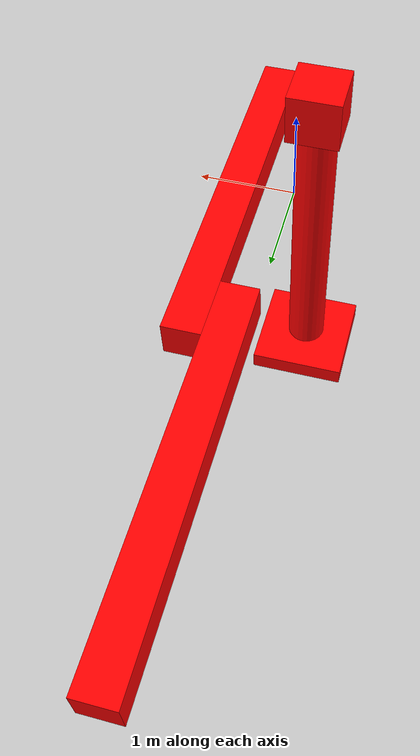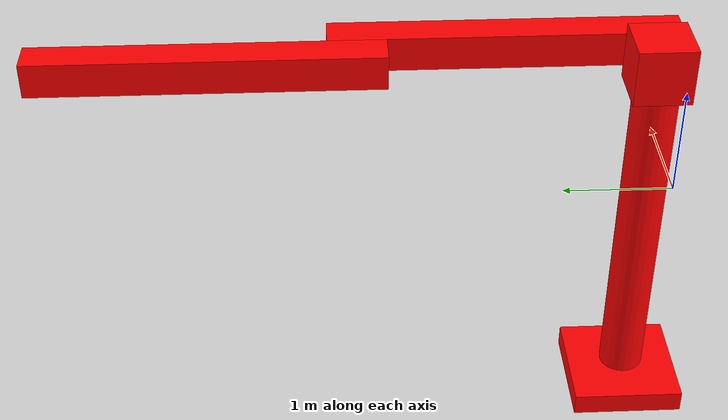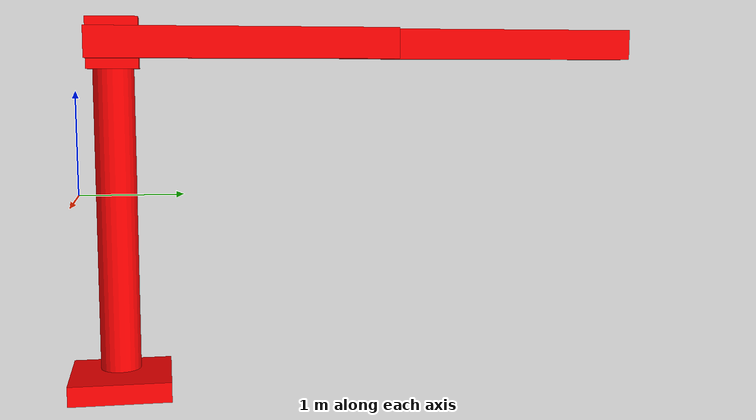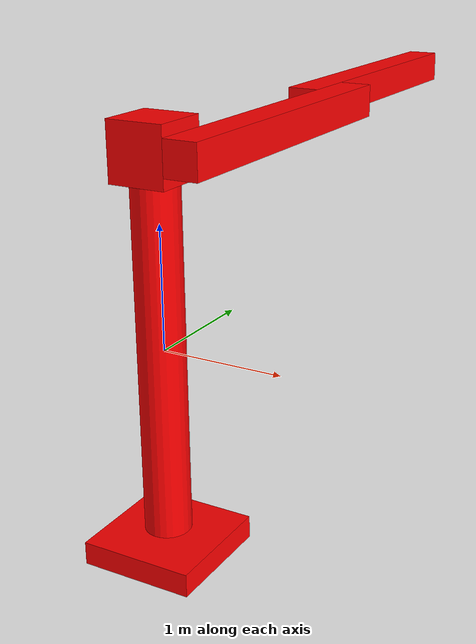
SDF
<?xml version='1.0'?>
<sdf version='1.6'>
  <model name='3dofarm'>
    <link name='link_0'>
      <pose frame=''>-0.27214 0.347509 -1.9245 0 -0 0</pose>
      <inertial>
        <mass>1</mass>
        <inertia>
          <ixx>0.166667</ixx>
          <ixy>0</ixy>
          <ixz>0</ixz>
          <iyy>0.166667</iyy>
          <iyz>0</iyz>
          <izz>0.166667</izz>
        </inertia>
        <pose frame=''>0 0 0 0 -0 0</pose>
      </inertial>
      <self_collide>0</self_collide>
      <kinematic>0</kinematic>
      <gravity>1</gravity>
      <visual name='visual'>
        <pose frame=''>0 0 0 0 -0 0</pose>
        <geometry>
          <box>
            <size>1 1 0.2</size>
          </box>
        </geometry>
        <material>
          <lighting>1</lighting>
          <script>
            <uri>file://media/materials/scripts/gazebo.material</uri>
            <name>Gazebo/Grey</name>
          </script>
          <shader type='pixel'>
            <normal_map>__default__</normal_map>
          </shader>
          <ambient>1 0 0 1</ambient>
          <diffuse>0.7 0.7 0.7 1</diffuse>
          <specular>0.01 0.01 0.01 1</specular>
          <emissive>0 0 0 1</emissive>
        </material>
        <transparency>0</transparency>
        <cast_shadows>1</cast_shadows>
      </visual>
      <collision name='collision'>
        <laser_retro>0</laser_retro>
        <max_contacts>10</max_contacts>
        <pose frame=''>0 0 0 0 -0 0</pose>
        <geometry>
          <box>
            <size>1 1 0.2</size>
          </box>
        </geometry>
        <surface>
          <friction>
            <ode>
              <mu>1</mu>
              <mu2>1</mu2>
              <fdir1>0 0 0</fdir1>
              <slip1>0</slip1>
              <slip2>0</slip2>
            </ode>
            <torsional>
              <coefficient>1</coefficient>
              <patch_radius>0</patch_radius>
              <surface_radius>0</surface_radius>
              <use_patch_radius>1</use_patch_radius>
              <ode>
                <slip>0</slip>
              </ode>
            </torsional>
          </friction>
          <bounce>
            <restitution_coefficient>0</restitution_coefficient>
            <threshold>1e+06</threshold>
          </bounce>
          <contact>
            <collide_without_contact>0</collide_without_contact>
            <collide_without_contact_bitmask>1</collide_without_contact_bitmask>
            <collide_bitmask>1</collide_bitmask>
            <ode>
              <soft_cfm>0</soft_cfm>
              <soft_erp>0.2</soft_erp>
              <kp>1e+13</kp>
              <kd>1</kd>
              <max_vel>0.01</max_vel>
              <min_depth>0</min_depth>
            </ode>
            <bullet>
              <split_impulse>1</split_impulse>
              <split_impulse_penetration_threshold>-0.01</split_impulse_penetration_threshold>
              <soft_cfm>0</soft_cfm>
              <soft_erp>0.2</soft_erp>
              <kp>1e+13</kp>
              <kd>1</kd>
            </bullet>
          </contact>
        </surface>
      </collision>
    </link>
    <link name='link_1'>
      <pose frame=''>-0.272137 0.347508 -0.2845 0 -0 0</pose>
      <inertial>
        <mass>1</mass>
        <inertia>
          <ixx>0.145833</ixx>
          <ixy>0</ixy>
          <ixz>0</ixz>
          <iyy>0.145833</iyy>
          <iyz>0</iyz>
          <izz>0.125</izz>
        </inertia>
        <pose frame=''>0 0 0 0 -0 0</pose>
      </inertial>
      <self_collide>0</self_collide>
      <kinematic>0</kinematic>
      <visual name='visual'>
        <pose frame=''>0 0 0 0 -0 0</pose>
        <geometry>
          <cylinder>
            <radius>0.2</radius>
            <length>3</length>
          </cylinder>
        </geometry>
        <material>
          <lighting>1</lighting>
          <script>
            <uri>file://media/materials/scripts/gazebo.material</uri>
            <name>Gazebo/Grey</name>
          </script>
          <shader type='pixel'>
            <normal_map>__default__</normal_map>
          </shader>
          <ambient>1 0 0 1</ambient>
          <diffuse>0.7 0.7 0.7 1</diffuse>
          <specular>0.01 0.01 0.01 1</specular>
          <emissive>0 0 0 1</emissive>
        </material>
        <transparency>0</transparency>
        <cast_shadows>1</cast_shadows>
      </visual>
      <collision name='collision'>
        <laser_retro>0</laser_retro>
        <max_contacts>10</max_contacts>
        <pose frame=''>0 0 0 0 -0 0</pose>
        <geometry>
          <cylinder>
            <radius>0.2</radius>
            <length>3</length>
          </cylinder>
        </geometry>
        <surface>
          <friction>
            <ode>
              <mu>1</mu>
              <mu2>1</mu2>
              <fdir1>0 0 0</fdir1>
              <slip1>0</slip1>
              <slip2>0</slip2>
            </ode>
            <torsional>
              <coefficient>1</coefficient>
              <patch_radius>0</patch_radius>
              <surface_radius>0</surface_radius>
              <use_patch_radius>1</use_patch_radius>
              <ode>
                <slip>0</slip>
              </ode>
            </torsional>
          </friction>
          <bounce>
            <restitution_coefficient>0</restitution_coefficient>
            <threshold>1e+06</threshold>
          </bounce>
          <contact>
            <collide_without_contact>0</collide_without_contact>
            <collide_without_contact_bitmask>1</collide_without_contact_bitmask>
            <collide_bitmask>1</collide_bitmask>
            <ode>
              <soft_cfm>0</soft_cfm>
              <soft_erp>0.2</soft_erp>
              <kp>1e+13</kp>
              <kd>1</kd>
              <max_vel>0.01</max_vel>
              <min_depth>0</min_depth>
            </ode>
            <bullet>
              <split_impulse>1</split_impulse>
              <split_impulse_penetration_threshold>-0.01</split_impulse_penetration_threshold>
              <soft_cfm>0</soft_cfm>
              <soft_erp>0.2</soft_erp>
              <kp>1e+13</kp>
              <kd>1</kd>
            </bullet>
          </contact>
        </surface>
      </collision>
    </link>
    <link name='link_2'>
      <pose frame=''>-0.272137 0.347508 1.4655 0 -0 0</pose>
      <inertial>
        <mass>1</mass>
        <inertia>
          <ixx>0.166667</ixx>
          <ixy>0</ixy>
          <ixz>0</ixz>
          <iyy>0.166667</iyy>
          <iyz>0</iyz>
          <izz>0.166667</izz>
        </inertia>
        <pose frame=''>0 0 0 0 -0 0</pose>
      </inertial>
      <self_collide>0</self_collide>
      <kinematic>0</kinematic>
      <visual name='visual'>
        <pose frame=''>0 0 0 0 -0 0</pose>
        <geometry>
          <box>
            <size>0.5 0.5 0.5</size>
          </box>
        </geometry>
        <material>
          <lighting>1</lighting>
          <script>
            <uri>file://media/materials/scripts/gazebo.material</uri>
            <name>Gazebo/Grey</name>
          </script>
          <shader type='pixel'>
            <normal_map>__default__</normal_map>
          </shader>
          <ambient>1 0 0 1</ambient>
          <diffuse>0.7 0.7 0.7 1</diffuse>
          <specular>0.01 0.01 0.01 1</specular>
          <emissive>0 0 0 1</emissive>
        </material>
        <transparency>0</transparency>
        <cast_shadows>1</cast_shadows>
      </visual>
      <collision name='collision'>
        <laser_retro>0</laser_retro>
        <max_contacts>10</max_contacts>
        <pose frame=''>0 0 0 0 -0 0</pose>
        <geometry>
          <box>
            <size>0.5 0.5 0.5</size>
          </box>
        </geometry>
        <surface>
          <friction>
            <ode>
              <mu>1</mu>
              <mu2>1</mu2>
              <fdir1>0 0 0</fdir1>
              <slip1>0</slip1>
              <slip2>0</slip2>
            </ode>
            <torsional>
              <coefficient>1</coefficient>
              <patch_radius>0</patch_radius>
              <surface_radius>0</surface_radius>
              <use_patch_radius>1</use_patch_radius>
              <ode>
                <slip>0</slip>
              </ode>
            </torsional>
          </friction>
          <bounce>
            <restitution_coefficient>0</restitution_coefficient>
            <threshold>1e+06</threshold>
          </bounce>
          <contact>
            <collide_without_contact>0</collide_without_contact>
            <collide_without_contact_bitmask>1</collide_without_contact_bitmask>
            <collide_bitmask>1</collide_bitmask>
            <ode>
              <soft_cfm>0</soft_cfm>
              <soft_erp>0.2</soft_erp>
              <kp>1e+13</kp>
              <kd>1</kd>
              <max_vel>0.01</max_vel>
              <min_depth>0</min_depth>
            </ode>
            <bullet>
              <split_impulse>1</split_impulse>
              <split_impulse_penetration_threshold>-0.01</split_impulse_penetration_threshold>
              <soft_cfm>0</soft_cfm>
              <soft_erp>0.2</soft_erp>
              <kp>1e+13</kp>
              <kd>1</kd>
            </bullet>
          </contact>
        </surface>
      </collision>
    </link>
    <link name='link_3'>
      <pose frame=''>0.127862 0.347503 1.4655 0 -0 0</pose>
      <inertial>
        <mass>1</mass>
        <inertia>
          <ixx>0.166667</ixx>
          <ixy>0</ixy>
          <ixz>0</ixz>
          <iyy>0.166667</iyy>
          <iyz>0</iyz>
          <izz>0.166667</izz>
        </inertia>
        <pose frame=''>0 0 0 0 -0 0</pose>
      </inertial>
      <self_collide>0</self_collide>
      <kinematic>0</kinematic>
      <visual name='visual'>
        <pose frame=''>0 1.25 0 0 -0 0</pose>
        <geometry>
          <box>
            <size>0.3 3 0.3</size>
          </box>
        </geometry>
        <material>
          <lighting>1</lighting>
          <script>
            <uri>file://media/materials/scripts/gazebo.material</uri>
            <name>Gazebo/Grey</name>
          </script>
          <shader type='pixel'>
            <normal_map>__default__</normal_map>
          </shader>
          <ambient>1 0 0 1</ambient>
          <diffuse>0.7 0.7 0.7 1</diffuse>
          <specular>0.01 0.01 0.01 1</specular>
          <emissive>0 0 0 1</emissive>
        </material>
        <transparency>0</transparency>
        <cast_shadows>1</cast_shadows>
      </visual>
      <collision name='collision'>
        <laser_retro>0</laser_retro>
        <max_contacts>10</max_contacts>
        <pose frame=''>0 1.25 0 0 -0 0</pose>
        <geometry>
          <box>
            <size>0.3 3 0.3</size>
          </box>
        </geometry>
        <surface>
          <friction>
            <ode>
              <mu>1</mu>
              <mu2>1</mu2>
              <fdir1>0 0 0</fdir1>
              <slip1>0</slip1>
              <slip2>0</slip2>
            </ode>
            <torsional>
              <coefficient>1</coefficient>
              <patch_radius>0</patch_radius>
              <surface_radius>0</surface_radius>
              <use_patch_radius>1</use_patch_radius>
              <ode>
                <slip>0</slip>
              </ode>
            </torsional>
          </friction>
          <bounce>
            <restitution_coefficient>0</restitution_coefficient>
            <threshold>1e+06</threshold>
          </bounce>
          <contact>
            <collide_without_contact>0</collide_without_contact>
            <collide_without_contact_bitmask>1</collide_without_contact_bitmask>
            <collide_bitmask>1</collide_bitmask>
            <ode>
              <soft_cfm>0</soft_cfm>
              <soft_erp>0.2</soft_erp>
              <kp>1e+13</kp>
              <kd>1</kd>
              <max_vel>0.01</max_vel>
              <min_depth>0</min_depth>
            </ode>
            <bullet>
              <split_impulse>1</split_impulse>
              <split_impulse_penetration_threshold>-0.01</split_impulse_penetration_threshold>
              <soft_cfm>0</soft_cfm>
              <soft_erp>0.2</soft_erp>
              <kp>1e+13</kp>
              <kd>1</kd>
            </bullet>
          </contact>
        </surface>
      </collision>
    </link>
    <link name='link_3_clone'>
      <pose frame=''>-0.172137 2.84751 1.4655 0 -0 0</pose>
      <inertial>
        <mass>1</mass>
        <inertia>
          <ixx>0.166667</ixx>
          <ixy>0</ixy>
          <ixz>0</ixz>
          <iyy>0.166667</iyy>
          <iyz>0</iyz>
          <izz>0.166667</izz>
        </inertia>
        <pose frame=''>0 0 0 0 -0 0</pose>
      </inertial>
      <self_collide>0</self_collide>
      <kinematic>0</kinematic>
      <visual name='visual'>
        <pose frame=''>0 1.25 0 0 -0 0</pose>
        <geometry>
          <box>
            <size>0.3 3 0.3</size>
          </box>
        </geometry>
        <material>
          <lighting>1</lighting>
          <script>
            <uri>file://media/materials/scripts/gazebo.material</uri>
            <name>Gazebo/Grey</name>
          </script>
          <shader type='pixel'>
            <normal_map>__default__</normal_map>
          </shader>
          <ambient>1 0 0 1</ambient>
          <diffuse>0.7 0.7 0.7 1</diffuse>
          <specular>0.01 0.01 0.01 1</specular>
          <emissive>0 0 0 1</emissive>
        </material>
        <transparency>0</transparency>
        <cast_shadows>1</cast_shadows>
      </visual>
      <collision name='collision'>
        <laser_retro>0</laser_retro>
        <max_contacts>10</max_contacts>
        <pose frame=''>0 1.25 0 0 -0 0</pose>
        <geometry>
          <box>
            <size>0.3 3 0.3</size>
          </box>
        </geometry>
        <surface>
          <friction>
            <ode>
              <mu>1</mu>
              <mu2>1</mu2>
              <fdir1>0 0 0</fdir1>
              <slip1>0</slip1>
              <slip2>0</slip2>
            </ode>
            <torsional>
              <coefficient>1</coefficient>
              <patch_radius>0</patch_radius>
              <surface_radius>0</surface_radius>
              <use_patch_radius>1</use_patch_radius>
              <ode>
                <slip>0</slip>
              </ode>
            </torsional>
          </friction>
          <bounce>
            <restitution_coefficient>0</restitution_coefficient>
            <threshold>1e+06</threshold>
          </bounce>
          <contact>
            <collide_without_contact>0</collide_without_contact>
            <collide_without_contact_bitmask>1</collide_without_contact_bitmask>
            <collide_bitmask>1</collide_bitmask>
            <ode>
              <soft_cfm>0</soft_cfm>
              <soft_erp>0.2</soft_erp>
              <kp>1e+13</kp>
              <kd>1</kd>
              <max_vel>0.01</max_vel>
              <min_depth>0</min_depth>
            </ode>
            <bullet>
              <split_impulse>1</split_impulse>
              <split_impulse_penetration_threshold>-0.01</split_impulse_penetration_threshold>
              <soft_cfm>0</soft_cfm>
              <soft_erp>0.2</soft_erp>
              <kp>1e+13</kp>
              <kd>1</kd>
            </bullet>
          </contact>
        </surface>
      </collision>
    </link>
    <joint name='link_0_JOINT_0' type='revolute'>
      <parent>link_0</parent>
      <child>link_1</child>
      <pose frame=''>0 0 0 0 -0.01 0</pose>
      <axis>
        <xyz>0 0 1</xyz>
        <use_parent_model_frame>0</use_parent_model_frame>
        <limit>
          <lower>-1.79769e+308</lower>
          <upper>1.79769e+308</upper>
          <effort>-1</effort>
          <velocity>-1</velocity>
        </limit>
        <dynamics>
          <spring_reference>0</spring_reference>
          <spring_stiffness>0</spring_stiffness>
          <damping>0</damping>
          <friction>0</friction>
        </dynamics>
      </axis>
      <physics>
        <ode>
          <limit>
            <cfm>0</cfm>
            <erp>0.2</erp>
          </limit>
          <suspension>
            <cfm>0</cfm>
            <erp>0.2</erp>
          </suspension>
        </ode>
      </physics>
    </joint>
    <joint name='link_1_JOINT_1' type='fixed'>
      <parent>link_1</parent>
      <child>link_2</child>
      <pose frame=''>0 0 0 0 -0 0</pose>
      <physics>
        <ode>
          <limit>
            <cfm>0</cfm>
            <erp>0.2</erp>
          </limit>
          <suspension>
            <cfm>0</cfm>
            <erp>0.2</erp>
          </suspension>
        </ode>
      </physics>
    </joint>
    <joint name='link_2_JOINT_2' type='revolute'>
      <parent>link_2</parent>
      <child>link_3</child>
      <pose frame=''>0 0 0 0 -0 0</pose>
      <axis>
        <xyz>1 0 0</xyz>
        <use_parent_model_frame>0</use_parent_model_frame>
        <limit>
          <lower>-1.79769e+308</lower>
          <upper>1.79769e+308</upper>
          <effort>-1</effort>
          <velocity>-1</velocity>
        </limit>
        <dynamics>
          <spring_reference>0</spring_reference>
          <spring_stiffness>0</spring_stiffness>
          <damping>0</damping>
          <friction>0</friction>
        </dynamics>
      </axis>
      <physics>
        <ode>
          <limit>
            <cfm>0</cfm>
            <erp>0.2</erp>
          </limit>
          <suspension>
            <cfm>0</cfm>
            <erp>0.2</erp>
          </suspension>
        </ode>
      </physics>
    </joint>
    <joint name='link_3_JOINT_6' type='revolute'>
      <parent>link_3</parent>
      <child>link_3_clone</child>
      <pose frame=''>0 0 0 0 -0 0</pose>
      <axis>
        <xyz>1 0 0</xyz>
        <use_parent_model_frame>0</use_parent_model_frame>
        <limit>
          <lower>-1.79769e+308</lower>
          <upper>1.79769e+308</upper>
          <effort>-1</effort>
          <velocity>-1</velocity>
        </limit>
        <dynamics>
          <spring_reference>0</spring_reference>
          <spring_stiffness>0</spring_stiffness>
          <damping>0</damping>
          <friction>0</friction>
        </dynamics>
      </axis>
      <physics>
        <ode>
          <limit>
            <cfm>0</cfm>
            <erp>0.2</erp>
          </limit>
          <suspension>
            <cfm>0</cfm>
            <erp>0.2</erp>
          </suspension>
        </ode>
      </physics>
    </joint>
    <static>1</static>
    <allow_auto_disable>1</allow_auto_disable>
  </model>
</sdf>
